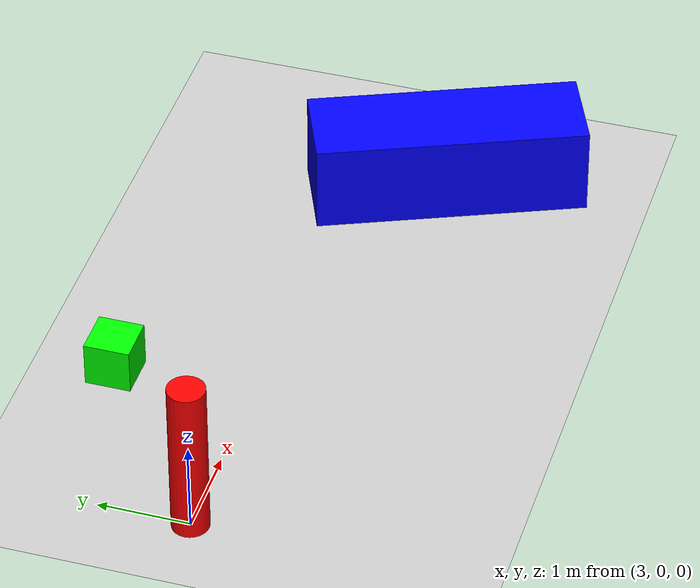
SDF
<?xml version="1.0" ?>
<sdf version="1.6">
  <world name="default">
    <!-- Prevent GPS/Equator flip by setting lat & lon -->
     <spherical_coordinates>
      <surface_model>EARTH_WGS84</surface_model>
      <latitude_deg>45.0</latitude_deg>  <longitude_deg>-70.0</longitude_deg>
      <elevation>0.0</elevation>
      <heading_deg>0</heading_deg>
    </spherical_coordinates>
    <!-- A global light source -->
    <include>
      <uri>model://sun</uri>
    </include>

    <include>
      <uri>model://ground_plane</uri>
    </include>

    <model name="test_pedestrian">
      <static>true</static>
      <pose>3.0 0 0.9 0 0 0</pose>
      <link name="link">
        <collision name="collision">
          <geometry>
            <cylinder>
              <radius>0.2</radius>
              <length>1.8</length>
            </cylinder>
          </geometry>
        </collision>
        <visual name="visual">
          <geometry>
            <cylinder>
              <radius>0.2</radius>
              <length>1.8</length>
            </cylinder>
          </geometry>
          <material>
            <ambient>1 0 0 1</ambient> </material>
        </visual>
      </link>
    </model>

    <model name="test_box_left">
      <static>true</static>
      <pose>5.0 1.5 0.25 0 0 0</pose>
      <link name="link">
        <collision name="collision">
          <geometry>
            <box><size>0.5 0.5 0.5</size></box>
          </geometry>
        </collision>
        <visual name="visual">
          <geometry>
            <box><size>0.5 0.5 0.5</size></box>
          </geometry>
          <material>
            <ambient>0 1 0 1</ambient> </material>
        </visual>
      </link>
    </model>

    <model name="test_barrier">
      <static>true</static>
      <pose>9.0 -1.0 0.5 0 0 0.4</pose> <link name="link">
        <collision name="collision">
          <geometry>
            <box><size>1.0 3.0 1.0</size></box>
          </geometry>
        </collision>
        <visual name="visual">
          <geometry>
            <box><size>1.0 3.0 1.0</size></box>
          </geometry>
          <material>
            <ambient>0 0 1 1</ambient> </material>
        </visual>
      </link>
    </model>

  </world>
</sdf>
